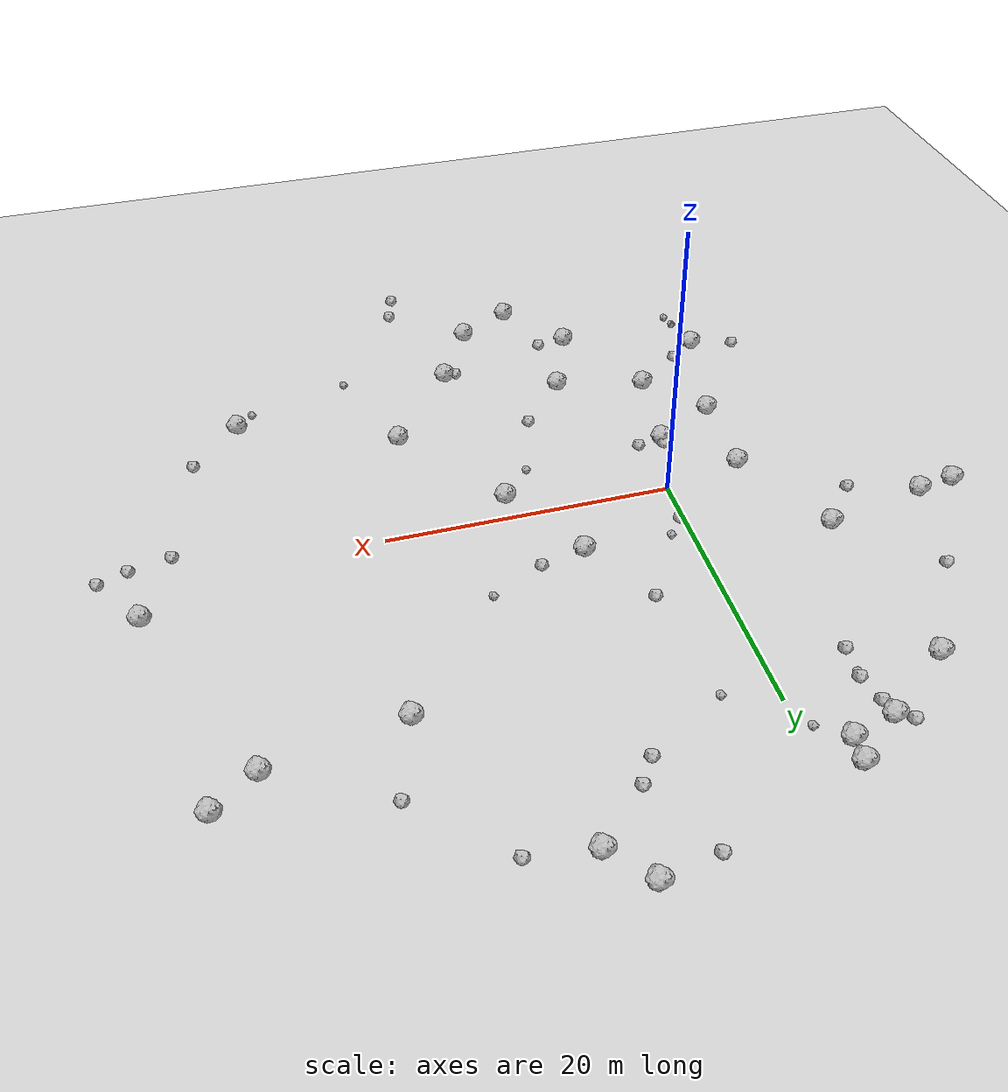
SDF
<sdf version="1.6">
 <world name="default">
  <include><uri>model://custom_ground</uri></include>
  <include><uri>model://sun</uri></include>
  <model name="rock1_0_0">
   <include><uri>model://rock1</uri><pose>-1.3858938956621074 -5.3238628336238705 0.5 0 0 0</pose></include>
  </model>
  <model name="rock1_0_1">
   <include><uri>model://rock1</uri><pose>-5.908091954505949 -7.836691175293762 0.5 0 0 0</pose></include>
  </model>
  <model name="rock1_0_2">
   <include><uri>model://rock1</uri><pose>36.0995478963206 3.127005827615129 0.5 0 0 0</pose></include>
  </model>
  <model name="rock1_0_3">
   <include><uri>model://rock1</uri><pose>5.597036644202056 -24.69886216838963 0.5 0 0 0</pose></include>
  </model>
  <model name="rock1_0_4">
   <include><uri>model://rock1</uri><pose>11.24757512019356 -2.0365448422358767 0.5 0 0 0</pose></include>
  </model>
  <model name="rock1_0_5">
   <include><uri>model://rock1</uri><pose>-9.339920895966632 6.588858190273982 0.5 0 0 0</pose></include>
  </model>
  <model name="rock1_0_6">
   <include><uri>model://rock1</uri><pose>21.298336856256405 15.401987858014323 0.5 0 0 0</pose></include>
  </model>
  <model name="rock1_0_7">
   <include><uri>model://rock1</uri><pose>-5.6780275784638174 -1.2363627953088248 0.5 0 0 0</pose></include>
  </model>
  <model name="rock1_0_8">
   <include><uri>model://rock1</uri><pose>17.15898315206359 -10.48183974764575 0.5 0 0 0</pose></include>
  </model>
  <model name="rock1_0_9">
   <include><uri>model://rock1</uri><pose>1.8889355317697536 -19.676474022234743 0.5 0 0 0</pose></include>
  </model>
  <model name="rock1_0_10">
   <include><uri>model://rock1</uri><pose>-2.3135482804699166 -12.223292945269542 0.5 0 0 0</pose></include>
  </model>
  <model name="rock1_0_11">
   <include><uri>model://rock1</uri><pose>-7.88916256918062 -16.425158222235858 0.5 0 0 0</pose></include>
  </model>
  <model name="rock1_0_12">
   <include><uri>model://rock1</uri><pose>-10.532552489612744 19.24120142432868 0.5 0 0 0</pose></include>
  </model>
  <model name="rock1_0_13">
   <include><uri>model://rock1</uri><pose>33.06026126121983 18.96862367546116 0.5 0 0 0</pose></include>
  </model>
  <model name="rock1_0_14">
   <include><uri>model://rock1</uri><pose>11.204567042529252 29.491614463943918 0.5 0 0 0</pose></include>
  </model>
  <model name="rock1_0_15">
   <include><uri>model://rock1</uri><pose>4.0849488687613835 -13.90670392717777 0.5 0 0 0</pose></include>
  </model>
  <model name="rock1_0_16">
   <include><uri>model://rock1</uri><pose>9.485528289862128 -22.55273230155673 0.5 0 0 0</pose></include>
  </model>
  <model name="rock1_0_17">
   <include><uri>model://rock1</uri><pose>-16.754497087226884 5.100887367565186 0.5 0 0 0</pose></include>
  </model>
  <model name="rock1_0_18">
   <include><uri>model://rock1</uri><pose>30.216342265077785 16.942078908361424 0.5 0 0 0</pose></include>
  </model>
  <model name="rock1_0_19">
   <include><uri>model://rock1</uri><pose>12.226218049524192 -17.358671773732226 0.5 0 0 0</pose></include>
  </model>
  <model name="rock1_0_20">
   <include><uri>model://rock1</uri><pose>13.429235327678981 26.90842543325504 0.5 0 0 0</pose></include>
  </model>
  <model name="rock1_0_21">
   <include><uri>model://rock1</uri><pose>-2.3558921164346494 25.45016693707811 0.5 0 0 0</pose></include>
  </model>
  <model name="rock1_0_22">
   <include><uri>model://rock1</uri><pose>28.38605183560842 -15.047474027126153 0.5 0 0 0</pose></include>
  </model>
  <model name="rock1_0_23">
   <include><uri>model://rock1</uri><pose>-2.5079212314752866 23.754764070981167 0.5 0 0 0</pose></include>
  </model>
  <model name="rock1_0_24">
   <include><uri>model://rock1</uri><pose>7.544929318466771 4.607330389223833 0.5 0 0 0</pose></include>
  </model>
  <model name="rock1_0_25">
   <include><uri>model://rock1</uri><pose>-5.560548960679899 22.879800342847005 0.5 0 0 0</pose></include>
  </model>
  <model name="rock1_0_26">
   <include><uri>model://rock1</uri><pose>-19.479949970078756 4.696597936214225 0.5 0 0 0</pose></include>
  </model>
  <model name="rock2_0_0">
   <include><uri>model://rock2</uri><pose>10.028339631658241 23.591088827306365 0.3 0 0 0</pose></include>
  </model>
  <model name="rock2_0_1">
   <include><uri>model://rock2</uri><pose>-11.089282862249132 -15.564834488402571 0.3 0 0 0</pose></include>
  </model>
  <model name="rock2_0_2">
   <include><uri>model://rock2</uri><pose>-5.167050962495372 17.39513143834428 0.3 0 0 0</pose></include>
  </model>
  <model name="rock2_0_3">
   <include><uri>model://rock2</uri><pose>38.6312310680208 -0.6811018175648051 0.3 0 0 0</pose></include>
  </model>
  <model name="rock2_0_4">
   <include><uri>model://rock2</uri><pose>-1.3757542251644352 -4.684190077012907 0.3 0 0 0</pose></include>
  </model>
  <model name="rock2_0_5">
   <include><uri>model://rock2</uri><pose>11.337686390909521 -17.32811027133863 0.3 0 0 0</pose></include>
  </model>
  <model name="rock2_0_6">
   <include><uri>model://rock2</uri><pose>4.017127433479001 -19.428895454493347 0.3 0 0 0</pose></include>
  </model>
  <model name="rock2_0_7">
   <include><uri>model://rock2</uri><pose>4.445701758972586 10.010069088983506 0.3 0 0 0</pose></include>
  </model>
  <model name="rock2_0_8">
   <include><uri>model://rock2</uri><pose>-14.930413338253036 12.27202208430245 0.3 0 0 0</pose></include>
  </model>
  <model name="rock2_0_9">
   <include><uri>model://rock2</uri><pose>-5.884496779654196 -14.95270759198938 0.3 0 0 0</pose></include>
  </model>
  <model name="rock2_0_10">
   <include><uri>model://rock2</uri><pose>-6.612114797544892 23.49637561214992 0.3 0 0 0</pose></include>
  </model>
  <model name="rock2_0_11">
   <include><uri>model://rock2</uri><pose>-4.971215328806462 19.717452183172178 0.3 0 0 0</pose></include>
  </model>
  <model name="rock2_0_12">
   <include><uri>model://rock2</uri><pose>-12.060684474924395 3.4526011956073503 0.3 0 0 0</pose></include>
  </model>
  <model name="rock2_0_13">
   <include><uri>model://rock2</uri><pose>14.81959330177093 -26.80086554873591 0.3 0 0 0</pose></include>
  </model>
  <model name="rock2_0_14">
   <include><uri>model://rock2</uri><pose>7.446474362160245 -9.8350487776177 0.3 0 0 0</pose></include>
  </model>
  <model name="rock2_0_15">
   <include><uri>model://rock2</uri><pose>10.663866050634375 5.325799456190538 0.3 0 0 0</pose></include>
  </model>
  <model name="rock2_0_16">
   <include><uri>model://rock2</uri><pose>14.206464832921057 -29.196759035135578 0.3 0 0 0</pose></include>
  </model>
  <model name="rock2_0_17">
   <include><uri>model://rock2</uri><pose>17.605102015783892 26.250283069565214 0.3 0 0 0</pose></include>
  </model>
  <model name="rock2_0_18">
   <include><uri>model://rock2</uri><pose>8.895533059651243 21.893018409915392 0.3 0 0 0</pose></include>
  </model>
  <model name="rock2_0_19">
   <include><uri>model://rock2</uri><pose>-5.41023906417621 21.709648705824485 0.3 0 0 0</pose></include>
  </model>
  <model name="rock2_0_20">
   <include><uri>model://rock2</uri><pose>31.831340885480174 -11.191776832833721 0.3 0 0 0</pose></include>
  </model>
  <model name="rock2_0_21">
   <include><uri>model://rock2</uri><pose>0.3626591465825797 3.3846309934458674 0.3 0 0 0</pose></include>
  </model>
  <model name="rock2_0_22">
   <include><uri>model://rock2</uri><pose>7.413702693675251 28.79967810922109 0.3 0 0 0</pose></include>
  </model>
  <model name="rock2_0_23">
   <include><uri>model://rock2</uri><pose>36.66062910800667 -1.390951485755597 0.3 0 0 0</pose></include>
  </model>
  <model name="rock2_0_24">
   <include><uri>model://rock2</uri><pose>22.967348306528493 21.044587971857474 0.3 0 0 0</pose></include>
  </model>
  <model name="rock2_0_25">
   <include><uri>model://rock2</uri><pose>33.84490243452474 -1.9972897824462308 0.3 0 0 0</pose></include>
  </model>
  <model name="rock2_0_26">
   <include><uri>model://rock2</uri><pose>0.4705660645638403 -4.892971899053677 0.3 0 0 0</pose></include>
  </model>
  <model name="rock3_0_0">
   <include><uri>model://rock3</uri><pose>9.016653266559867 -4.528922940438502 0.2 0 0 0</pose></include>
  </model>
  <model name="rock3_0_1">
   <include><uri>model://rock3</uri><pose>3.476970161241841 18.704200863104184 0.2 0 0 0</pose></include>
  </model>
  <model name="rock3_0_2">
   <include><uri>model://rock3</uri><pose>-0.7746439150366164 22.27271661187539 0.2 0 0 0</pose></include>
  </model>
  <model name="rock3_0_3">
   <include><uri>model://rock3</uri><pose>-5.095962518167065 19.243273090195935 0.2 0 0 0</pose></include>
  </model>
  <model name="rock3_0_4">
   <include><uri>model://rock3</uri><pose>27.158186050207078 -16.394180985790726 0.2 0 0 0</pose></include>
  </model>
  <model name="rock3_0_5">
   <include><uri>model://rock3</uri><pose>14.325366584242452 7.1298934306792034 0.2 0 0 0</pose></include>
  </model>
  <model name="rock3_0_6">
   <include><uri>model://rock3</uri><pose>-7.451679656819255 -19.56230301374371 0.2 0 0 0</pose></include>
  </model>
  <model name="rock3_0_7">
   <include><uri>model://rock3</uri><pose>1.4100322569830972 4.740310234881434 0.2 0 0 0</pose></include>
  </model>
  <model name="rock3_0_8">
   <include><uri>model://rock3</uri><pose>19.930811135144253 -18.346520089433746 0.2 0 0 0</pose></include>
  </model>
  <model name="rock3_0_9">
   <include><uri>model://rock3</uri><pose>-7.176867645601918 -20.681190055798606 0.2 0 0 0</pose></include>
  </model>
  <model name="rock3_0_10">
   <include><uri>model://rock3</uri><pose>-7.459194004510126 -19.56381084130259 0.2 0 0 0</pose></include>
  </model>
 </world>
</sdf>
